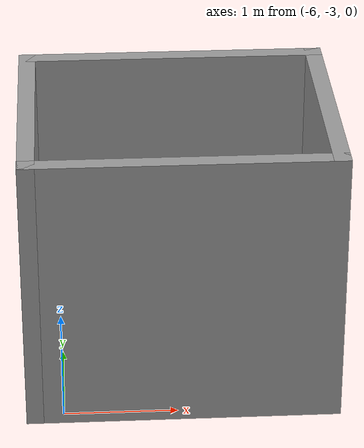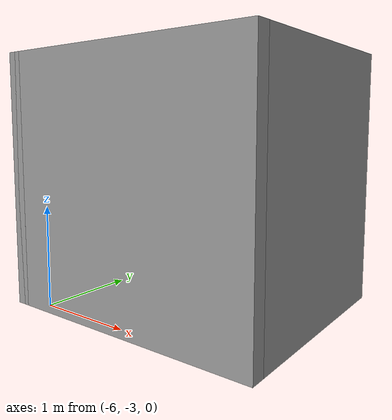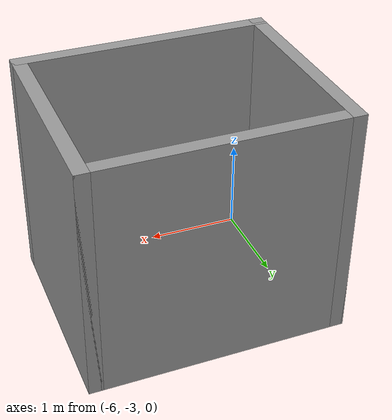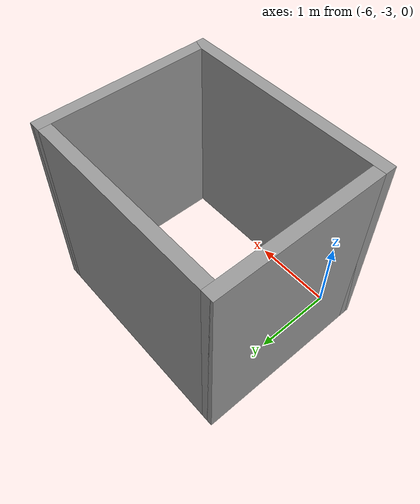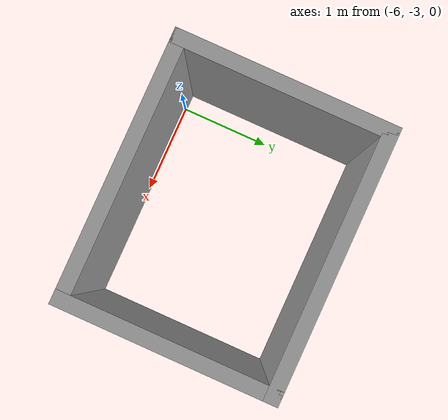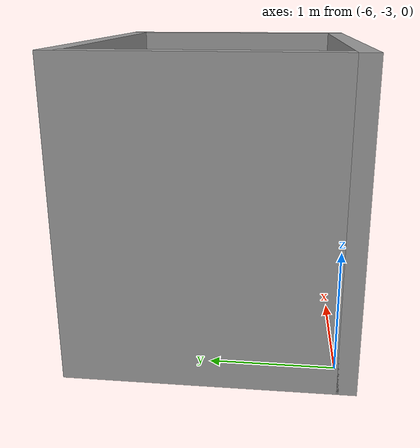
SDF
<?xml version='1.0'?>
<sdf version='1.6'>
  <model name='Untitled'>
    <pose frame=''>-4.95 -2.01 0 0 -0 0</pose>
    <link name='Wall_0'>
      <collision name='Wall_0_Collision'>
        <geometry>
          <box>
            <size>2.25 0.15 2.5</size>
          </box>
        </geometry>
        <pose frame=''>0 0 1.25 0 -0 0</pose>
      </collision>
      <visual name='Wall_0_Visual'>
        <pose frame=''>0 0 1.25 0 -0 0</pose>
        <geometry>
          <box>
            <size>2.25 0.15 2.5</size>
          </box>
        </geometry>
        <material>
          <script>
            <uri>file://media/materials/scripts/gazebo.material</uri>
            <name>Gazebo/Grey</name>
          </script>
          <ambient>1 1 1 1</ambient>
        </material>
        <meta>
          <layer>0</layer>
        </meta>
      </visual>
      <pose frame=''>-1.3 0 0 0 -0 1.5708</pose>
    </link>
    <link name='Wall_1'>
      <collision name='Wall_1_Collision'>
        <geometry>
          <box>
            <size>2.75 0.15 2.5</size>
          </box>
        </geometry>
        <pose frame=''>0 0 1.25 0 -0 0</pose>
      </collision>
      <visual name='Wall_1_Visual'>
        <pose frame=''>0 0 1.25 0 -0 0</pose>
        <geometry>
          <box>
            <size>2.75 0.15 2.5</size>
          </box>
        </geometry>
        <material>
          <script>
            <uri>file://media/materials/scripts/gazebo.material</uri>
            <name>Gazebo/Grey</name>
          </script>
          <ambient>1 1 1 1</ambient>
        </material>
        <meta>
          <layer>0</layer>
        </meta>
      </visual>
      <pose frame=''>0 1.05 0 0 -0 0</pose>
    </link>
    <link name='Wall_2'>
      <collision name='Wall_2_Collision'>
        <geometry>
          <box>
            <size>2.25 0.15 2.5</size>
          </box>
        </geometry>
        <pose frame=''>0 0 1.25 0 -0 0</pose>
      </collision>
      <visual name='Wall_2_Visual'>
        <pose frame=''>0 0 1.25 0 -0 0</pose>
        <geometry>
          <box>
            <size>2.25 0.15 2.5</size>
          </box>
        </geometry>
        <material>
          <script>
            <uri>file://media/materials/scripts/gazebo.material</uri>
            <name>Gazebo/Grey</name>
          </script>
          <ambient>1 1 1 1</ambient>
        </material>
        <meta>
          <layer>0</layer>
        </meta>
      </visual>
      <pose frame=''>1.3 0 0 0 0 -1.5708</pose>
    </link>
    <link name='Wall_3'>
      <collision name='Wall_3_Collision'>
        <geometry>
          <box>
            <size>2.75 0.15 2.5</size>
          </box>
        </geometry>
        <pose frame=''>0 0 1.25 0 -0 0</pose>
      </collision>
      <visual name='Wall_3_Visual'>
        <pose frame=''>0 0 1.25 0 -0 0</pose>
        <geometry>
          <box>
            <size>2.75 0.15 2.5</size>
          </box>
        </geometry>
        <material>
          <script>
            <uri>file://media/materials/scripts/gazebo.material</uri>
            <name>Gazebo/Grey</name>
          </script>
          <ambient>1 1 1 1</ambient>
        </material>
        <meta>
          <layer>0</layer>
        </meta>
      </visual>
      <pose frame=''>0 -1.05 0 0 -0 3.14159</pose>
    </link>
    <link name='Wall_4'>
      <collision name='Wall_4_Collision'>
        <geometry>
          <box>
            <size>0.15 0.15 2.5</size>
          </box>
        </geometry>
        <pose frame=''>0 0 1.25 0 -0 0</pose>
      </collision>
      <visual name='Wall_4_Visual'>
        <pose frame=''>0 0 1.25 0 -0 0</pose>
        <geometry>
          <box>
            <size>0.15 0.15 2.5</size>
          </box>
        </geometry>
        <material>
          <script>
            <uri>file://media/materials/scripts/gazebo.material</uri>
            <name>Gazebo/Grey</name>
          </script>
          <ambient>1 1 1 1</ambient>
        </material>
        <meta>
          <layer>0</layer>
        </meta>
      </visual>
      <pose frame=''>-1.3 -1.05 0 0 -0 0</pose>
    </link>
    <static>1</static>
  </model>
</sdf>
